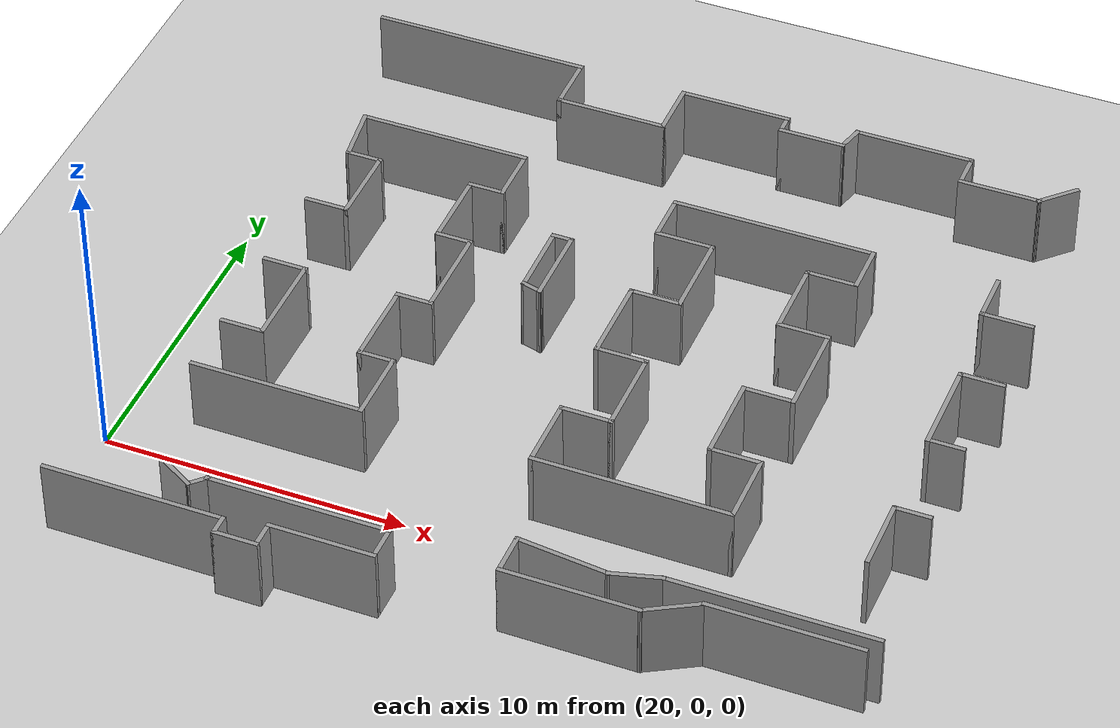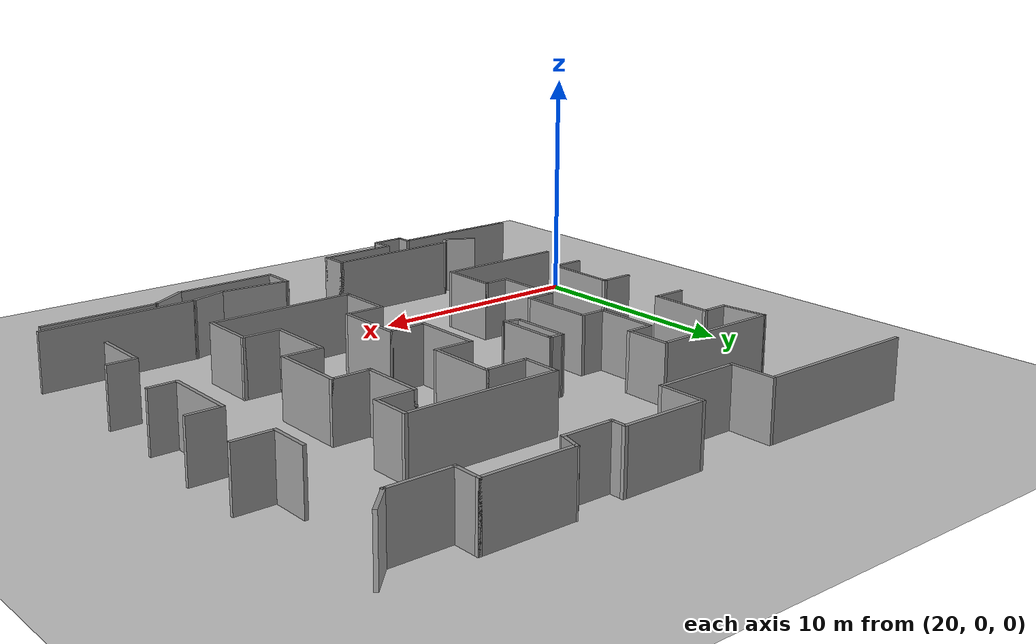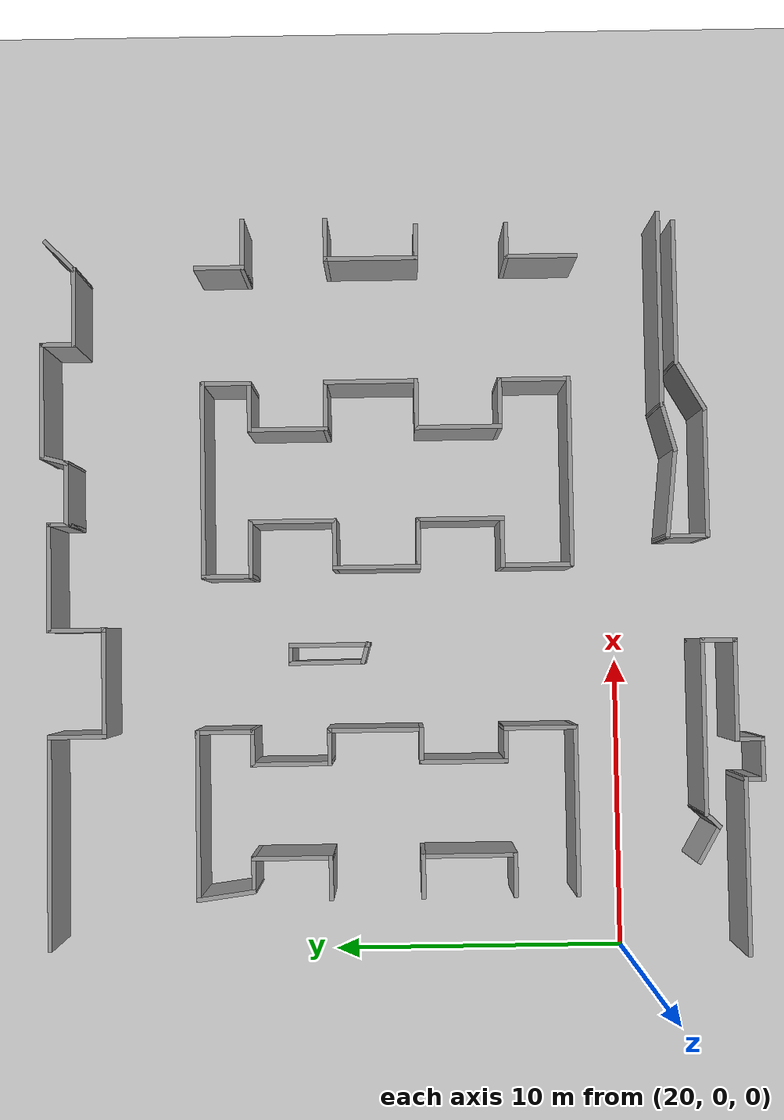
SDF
<sdf version="1.6">
 <world name="default">
  <model name="ground_plane">
   <static>1</static>
   <link name="link">
    <collision name="collision">
     <geometry><plane><normal>0 0 1</normal><size>100 100</size></plane></geometry>
     <surface><friction><ode><mu>100</mu><mu2>50</mu2></ode></friction></surface>
    </collision>
    <visual name="visual">
     <cast_shadows>0</cast_shadows>
     <geometry><plane><normal>0 0 1</normal><size>100 100</size></plane></geometry>
     <material>
      <script><uri>file://media/materials/scripts/gazebo.material</uri><name>Gazebo/Grey</name></script>
     </material>
    </visual>
   </link>
  </model>
  <model name="airport">
   <pose>30.6301 8.89323 0 0 -0 0</pose>
   <link name="Wall_100">
    <collision name="Wall_100_Collision">
     <geometry><box><size>2.5 0.15 2.5</size></box></geometry>
     <pose>0 0 1.25 0 -0 0</pose>
    </collision>
    <visual name="Wall_100_Visual">
     <pose>0 0 1.25 0 -0 0</pose>
     <geometry><box><size>2.5 0.15 2.5</size></box></geometry>
     <material>
      <script><uri>file://media/materials/scripts/gazebo.material</uri><name>Gazebo/Grey</name></script>
      <ambient>1 1 1 1</ambient>
     </material>
     <meta><layer>0</layer></meta>
    </visual>
    <pose>-2.79356 -5.95307 0 0 0 -1.5708</pose>
   </link>
   <link name="Wall_101">
    <collision name="Wall_101_Collision">
     <geometry><box><size>5.75 0.15 2.5</size></box></geometry>
     <pose>0 0 1.25 0 -0 0</pose>
    </collision>
    <visual name="Wall_101_Visual">
     <pose>0 0 1.25 0 -0 0</pose>
     <geometry><box><size>5.75 0.15 2.5</size></box></geometry>
     <material>
      <script><uri>file://media/materials/scripts/gazebo.material</uri><name>Gazebo/Grey</name></script>
      <ambient>1 1 1 1</ambient>
     </material>
     <meta><layer>0</layer></meta>
    </visual>
    <pose>-5.59356 -7.12807 0 0 -0 3.14159</pose>
   </link>
   <link name="Wall_103">
    <collision name="Wall_103_Collision">
     <geometry><box><size>1.5 0.15 2.5</size></box></geometry>
     <pose>0 0 1.25 0 -0 0</pose>
    </collision>
    <visual name="Wall_103_Visual">
     <pose>0 0 1.25 0 -0 0</pose>
     <geometry><box><size>1.5 0.15 2.5</size></box></geometry>
     <material>
      <script><uri>file://media/materials/scripts/gazebo.material</uri><name>Gazebo/Grey</name></script>
      <ambient>1 1 1 1</ambient>
     </material>
     <meta><layer>0</layer></meta>
    </visual>
    <pose>-7.71856 -5.02807 0 0 -0 0</pose>
   </link>
   <link name="Wall_104">
    <collision name="Wall_104_Collision">
     <geometry><box><size>3.25 0.15 2.5</size></box></geometry>
     <pose>0 0 1.25 0 -0 0</pose>
    </collision>
    <visual name="Wall_104_Visual">
     <pose>0 0 1.25 0 -0 0</pose>
     <geometry><box><size>3.25 0.15 2.5</size></box></geometry>
     <material>
      <script><uri>file://media/materials/scripts/gazebo.material</uri><name>Gazebo/Grey</name></script>
      <ambient>1 1 1 1</ambient>
     </material>
     <meta><layer>0</layer></meta>
    </visual>
    <pose>-7.04356 -3.47807 0 0 -0 1.5708</pose>
   </link>
   <link name="Wall_105">
    <collision name="Wall_105_Collision">
     <geometry><box><size>1.5 0.15 2.5</size></box></geometry>
     <pose>0 0 1.25 0 -0 0</pose>
    </collision>
    <visual name="Wall_105_Visual">
     <pose>0 0 1.25 0 -0 0</pose>
     <geometry><box><size>1.5 0.15 2.5</size></box></geometry>
     <material>
      <script><uri>file://media/materials/scripts/gazebo.material</uri><name>Gazebo/Grey</name></script>
      <ambient>1 1 1 1</ambient>
     </material>
     <meta><layer>0</layer></meta>
    </visual>
    <pose>-7.71856 -1.92807 0 0 -0 3.14159</pose>
   </link>
   <link name="Wall_107">
    <collision name="Wall_107_Collision">
     <geometry><box><size>1.5 0.15 2.5</size></box></geometry>
     <pose>0 0 1.25 0 -0 0</pose>
    </collision>
    <visual name="Wall_107_Visual">
     <pose>0 0 1.25 0 -0 0</pose>
     <geometry><box><size>1.5 0.15 2.5</size></box></geometry>
     <material>
      <script><uri>file://media/materials/scripts/gazebo.material</uri><name>Gazebo/Grey</name></script>
      <ambient>1 1 1 1</ambient>
     </material>
     <meta><layer>0</layer></meta>
    </visual>
    <pose>-7.71856 1.17193 0 0 -0 0</pose>
   </link>
   <link name="Wall_108">
    <collision name="Wall_108_Collision">
     <geometry><box><size>2.75 0.15 2.5</size></box></geometry>
     <pose>0 0 1.25 0 -0 0</pose>
    </collision>
    <visual name="Wall_108_Visual">
     <pose>0 0 1.25 0 -0 0</pose>
     <geometry><box><size>2.75 0.15 2.5</size></box></geometry>
     <material>
      <script><uri>file://media/materials/scripts/gazebo.material</uri><name>Gazebo/Grey</name></script>
      <ambient>1 1 1 1</ambient>
     </material>
     <meta><layer>0</layer></meta>
    </visual>
    <pose>-7.04356 2.47193 0 0 -0 1.5708</pose>
   </link>
   <link name="Wall_109">
    <collision name="Wall_109_Collision">
     <geometry><box><size>1.25 0.15 2.5</size></box></geometry>
     <pose>0 0 1.25 0 -0 0</pose>
    </collision>
    <visual name="Wall_109_Visual">
     <pose>0 0 1.25 0 -0 0</pose>
     <geometry><box><size>1.25 0.15 2.5</size></box></geometry>
     <material>
      <script><uri>file://media/materials/scripts/gazebo.material</uri><name>Gazebo/Grey</name></script>
      <ambient>1 1 1 1</ambient>
     </material>
     <meta><layer>0</layer></meta>
    </visual>
    <pose>-7.59356 3.77193 0 0 -0 3.14159</pose>
   </link>
   <link name="Wall_110">
    <collision name="Wall_110_Collision">
     <geometry><box><size>2.01681 0.15 2.5</size></box></geometry>
     <pose>0 0 1.25 0 -0 0</pose>
    </collision>
    <visual name="Wall_110_Visual">
     <pose>0 0 1.25 0 -0 0</pose>
     <geometry><box><size>2.01681 0.15 2.5</size></box></geometry>
     <material>
      <script><uri>file://media/materials/scripts/gazebo.material</uri><name>Gazebo/Grey</name></script>
      <ambient>1 1 1 1</ambient>
     </material>
     <meta><layer>0</layer></meta>
    </visual>
    <pose>-8.26856 4.69693 0 0 -0 1.70512</pose>
   </link>
   <link name="Wall_132">
    <collision name="Wall_132_Collision">
     <geometry><box><size>1.5 0.15 2.5</size></box></geometry>
     <pose>0 0 1.25 0 -0 0</pose>
    </collision>
    <visual name="Wall_132_Visual">
     <pose>0 0 1.25 0 -0 0</pose>
     <geometry><box><size>1.5 0.15 2.5</size></box></geometry>
     <material>
      <script><uri>file://media/materials/scripts/gazebo.material</uri><name>Gazebo/Grey</name></script>
      <ambient>1 1 1 1</ambient>
     </material>
     <meta><layer>0</layer></meta>
    </visual>
    <pose>-6.78978 -11.567 0 0 0 -0.523599</pose>
   </link>
   <link name="Wall_133">
    <collision name="Wall_133_Collision">
     <geometry><box><size>0.75 0.15 2.5</size></box></geometry>
     <pose>0 0 1.25 0 -0 0</pose>
    </collision>
    <visual name="Wall_133_Visual">
     <pose>0 0 1.25 0 -0 0</pose>
     <geometry><box><size>0.75 0.15 2.5</size></box></geometry>
     <material>
      <script><uri>file://media/materials/scripts/gazebo.material</uri><name>Gazebo/Grey</name></script>
      <ambient>1 1 1 1</ambient>
     </material>
     <meta><layer>0</layer></meta>
    </visual>
    <pose>-5.99308 -11.6924 0 0 -0 0.785398</pose>
   </link>
   <link name="Wall_134">
    <collision name="Wall_134_Collision">
     <geometry><box><size>6 0.15 2.5</size></box></geometry>
     <pose>0 0 1.25 0 -0 0</pose>
    </collision>
    <visual name="Wall_134_Visual">
     <pose>0 0 1.25 0 -0 0</pose>
     <geometry><box><size>6 0.15 2.5</size></box></geometry>
     <material>
      <script><uri>file://media/materials/scripts/gazebo.material</uri><name>Gazebo/Grey</name></script>
      <ambient>1 1 1 1</ambient>
     </material>
     <meta><layer>0</layer></meta>
    </visual>
    <pose>-2.85595 -11.4803 0 0 -0 0</pose>
   </link>
   <link name="Wall_135">
    <collision name="Wall_135_Collision">
     <geometry><box><size>1.25 0.15 2.5</size></box></geometry>
     <pose>0 0 1.25 0 -0 0</pose>
    </collision>
    <visual name="Wall_135_Visual">
     <pose>0 0 1.25 0 -0 0</pose>
     <geometry><box><size>1.25 0.15 2.5</size></box></geometry>
     <material>
      <script><uri>file://media/materials/scripts/gazebo.material</uri><name>Gazebo/Grey</name></script>
      <ambient>1 1 1 1</ambient>
     </material>
     <meta><layer>0</layer></meta>
    </visual>
    <pose>0.069051 -12.0303 0 0 0 -1.5708</pose>
   </link>
   <link name="Wall_136">
    <collision name="Wall_136_Collision">
     <geometry><box><size>3.5 0.15 2.5</size></box></geometry>
     <pose>0 0 1.25 0 -0 0</pose>
    </collision>
    <visual name="Wall_136_Visual">
     <pose>0 0 1.25 0 -0 0</pose>
     <geometry><box><size>3.5 0.15 2.5</size></box></geometry>
     <material>
      <script><uri>file://media/materials/scripts/gazebo.material</uri><name>Gazebo/Grey</name></script>
      <ambient>1 1 1 1</ambient>
     </material>
     <meta><layer>0</layer></meta>
    </visual>
    <pose>-1.60595 -12.5803 0 0 -0 3.14159</pose>
   </link>
   <link name="Wall_137">
    <collision name="Wall_137_Collision">
     <geometry><box><size>1 0.15 2.5</size></box></geometry>
     <pose>0 0 1.25 0 -0 0</pose>
    </collision>
    <visual name="Wall_137_Visual">
     <pose>0 0 1.25 0 -0 0</pose>
     <geometry><box><size>1 0.15 2.5</size></box></geometry>
     <material>
      <script><uri>file://media/materials/scripts/gazebo.material</uri><name>Gazebo/Grey</name></script>
      <ambient>1 1 1 1</ambient>
     </material>
     <meta><layer>0</layer></meta>
    </visual>
    <pose>-3.28095 -13.0053 0 0 0 -1.5708</pose>
   </link>
   <link name="Wall_138">
    <collision name="Wall_138_Collision">
     <geometry><box><size>1.5 0.15 2.5</size></box></geometry>
     <pose>0 0 1.25 0 -0 0</pose>
    </collision>
    <visual name="Wall_138_Visual">
     <pose>0 0 1.25 0 -0 0</pose>
     <geometry><box><size>1.5 0.15 2.5</size></box></geometry>
     <material>
      <script><uri>file://media/materials/scripts/gazebo.material</uri><name>Gazebo/Grey</name></script>
      <ambient>1 1 1 1</ambient>
     </material>
     <meta><layer>0</layer></meta>
    </visual>
    <pose>-3.95595 -13.4303 0 0 -0 3.14159</pose>
   </link>
   <link name="Wall_139">
    <collision name="Wall_139_Collision">
     <geometry><box><size>0.75 0.15 2.5</size></box></geometry>
     <pose>0 0 1.25 0 -0 0</pose>
    </collision>
    <visual name="Wall_139_Visual">
     <pose>0 0 1.25 0 -0 0</pose>
     <geometry><box><size>0.75 0.15 2.5</size></box></geometry>
     <material>
      <script><uri>file://media/materials/scripts/gazebo.material</uri><name>Gazebo/Grey</name></script>
      <ambient>1 1 1 1</ambient>
     </material>
     <meta><layer>0</layer></meta>
    </visual>
    <pose>-4.63095 -13.1303 0 0 -0 1.5708</pose>
   </link>
   <link name="Wall_140">
    <collision name="Wall_140_Collision">
     <geometry><box><size>6 0.15 2.5</size></box></geometry>
     <pose>0 0 1.25 0 -0 0</pose>
    </collision>
    <visual name="Wall_140_Visual">
     <pose>0 0 1.25 0 -0 0</pose>
     <geometry><box><size>6 0.15 2.5</size></box></geometry>
     <material>
      <script><uri>file://media/materials/scripts/gazebo.material</uri><name>Gazebo/Grey</name></script>
      <ambient>1 1 1 1</ambient>
     </material>
     <meta><layer>0</layer></meta>
    </visual>
    <pose>-7.55595 -12.8303 0 0 -0 3.14159</pose>
   </link>
   <link name="Wall_146">
    <collision name="Wall_146_Collision">
     <geometry><box><size>2 0.15 2.5</size></box></geometry>
     <pose>0 0 1.25 0 -0 0</pose>
    </collision>
    <visual name="Wall_146_Visual">
     <pose>0 0 1.25 0 -0 0</pose>
     <geometry><box><size>2 0.15 2.5</size></box></geometry>
     <material>
      <script><uri>file://media/materials/scripts/gazebo.material</uri><name>Gazebo/Grey</name></script>
      <ambient>1 1 1 1</ambient>
     </material>
     <meta><layer>0</layer></meta>
    </visual>
    <pose>3.39066 3.77039 0 0 -0 0</pose>
   </link>
   <link name="Wall_150">
    <collision name="Wall_150_Collision">
     <geometry><box><size>3 0.15 2.5</size></box></geometry>
     <pose>0 0 1.25 0 -0 0</pose>
    </collision>
    <visual name="Wall_150_Visual">
     <pose>0 0 1.25 0 -0 0</pose>
     <geometry><box><size>3 0.15 2.5</size></box></geometry>
     <material>
      <script><uri>file://media/materials/scripts/gazebo.material</uri><name>Gazebo/Grey</name></script>
      <ambient>1 1 1 1</ambient>
     </material>
     <meta><layer>0</layer></meta>
    </visual>
    <pose>4.31566 2.34539 0 0 0 -1.5708</pose>
   </link>
   <link name="Wall_151">
    <collision name="Wall_151_Collision">
     <geometry><box><size>1.75 0.15 2.5</size></box></geometry>
     <pose>0 0 1.25 0 -0 0</pose>
    </collision>
    <visual name="Wall_151_Visual">
     <pose>0 0 1.25 0 -0 0</pose>
     <geometry><box><size>1.75 0.15 2.5</size></box></geometry>
     <material>
      <script><uri>file://media/materials/scripts/gazebo.material</uri><name>Gazebo/Grey</name></script>
      <ambient>1 1 1 1</ambient>
     </material>
     <meta><layer>0</layer></meta>
    </visual>
    <pose>3.51566 0.920386 0 0 -0 3.14159</pose>
   </link>
   <link name="Wall_152">
    <collision name="Wall_152_Collision">
     <geometry><box><size>3 0.15 2.5</size></box></geometry>
     <pose>0 0 1.25 0 -0 0</pose>
    </collision>
    <visual name="Wall_152_Visual">
     <pose>0 0 1.25 0 -0 0</pose>
     <geometry><box><size>3 0.15 2.5</size></box></geometry>
     <material>
      <script><uri>file://media/materials/scripts/gazebo.material</uri><name>Gazebo/Grey</name></script>
      <ambient>1 1 1 1</ambient>
     </material>
     <meta><layer>0</layer></meta>
    </visual>
    <pose>2.71566 -0.504614 0 0 0 -1.5708</pose>
   </link>
   <link name="Wall_153">
    <collision name="Wall_153_Collision">
     <geometry><box><size>1.75 0.15 2.5</size></box></geometry>
     <pose>0 0 1.25 0 -0 0</pose>
    </collision>
    <visual name="Wall_153_Visual">
     <pose>0 0 1.25 0 -0 0</pose>
     <geometry><box><size>1.75 0.15 2.5</size></box></geometry>
     <material>
      <script><uri>file://media/materials/scripts/gazebo.material</uri><name>Gazebo/Grey</name></script>
      <ambient>1 1 1 1</ambient>
     </material>
     <meta><layer>0</layer></meta>
    </visual>
    <pose>3.51566 -1.92961 0 0 -0 0</pose>
   </link>
   <link name="Wall_154">
    <collision name="Wall_154_Collision">
     <geometry><box><size>3 0.15 2.5</size></box></geometry>
     <pose>0 0 1.25 0 -0 0</pose>
    </collision>
    <visual name="Wall_154_Visual">
     <pose>0 0 1.25 0 -0 0</pose>
     <geometry><box><size>3 0.15 2.5</size></box></geometry>
     <material>
      <script><uri>file://media/materials/scripts/gazebo.material</uri><name>Gazebo/Grey</name></script>
      <ambient>1 1 1 1</ambient>
     </material>
     <meta><layer>0</layer></meta>
    </visual>
    <pose>4.31566 -3.35461 0 0 0 -1.5708</pose>
   </link>
   <link name="Wall_155">
    <collision name="Wall_155_Collision">
     <geometry><box><size>1.75 0.15 2.5</size></box></geometry>
     <pose>0 0 1.25 0 -0 0</pose>
    </collision>
    <visual name="Wall_155_Visual">
     <pose>0 0 1.25 0 -0 0</pose>
     <geometry><box><size>1.75 0.15 2.5</size></box></geometry>
     <material>
      <script><uri>file://media/materials/scripts/gazebo.material</uri><name>Gazebo/Grey</name></script>
      <ambient>1 1 1 1</ambient>
     </material>
     <meta><layer>0</layer></meta>
    </visual>
    <pose>3.51566 -4.77961 0 0 -0 3.14159</pose>
   </link>
   <link name="Wall_158">
    <collision name="Wall_158_Collision">
     <geometry><box><size>2.5 0.15 2.5</size></box></geometry>
     <pose>0 0 1.25 0 -0 0</pose>
    </collision>
    <visual name="Wall_158_Visual">
     <pose>0 0 1.25 0 -0 0</pose>
     <geometry><box><size>2.5 0.15 2.5</size></box></geometry>
     <material>
      <script><uri>file://media/materials/scripts/gazebo.material</uri><name>Gazebo/Grey</name></script>
      <ambient>1 1 1 1</ambient>
     </material>
     <meta><layer>0</layer></meta>
    </visual>
    <pose>2.71566 -5.95461 0 0 0 -1.5708</pose>
   </link>
   <link name="Wall_159">
    <collision name="Wall_159_Collision">
     <geometry><box><size>6.5 0.15 2.5</size></box></geometry>
     <pose>0 0 1.25 0 -0 0</pose>
    </collision>
    <visual name="Wall_159_Visual">
     <pose>0 0 1.25 0 -0 0</pose>
     <geometry><box><size>6.5 0.15 2.5</size></box></geometry>
     <material>
      <script><uri>file://media/materials/scripts/gazebo.material</uri><name>Gazebo/Grey</name></script>
      <ambient>1 1 1 1</ambient>
     </material>
     <meta><layer>0</layer></meta>
    </visual>
    <pose>5.89066 -7.12961 0 0 -0 0</pose>
   </link>
   <link name="Wall_160">
    <collision name="Wall_160_Collision">
     <geometry><box><size>2.5 0.15 2.5</size></box></geometry>
     <pose>0 0 1.25 0 -0 0</pose>
    </collision>
    <visual name="Wall_160_Visual">
     <pose>0 0 1.25 0 -0 0</pose>
     <geometry><box><size>2.5 0.15 2.5</size></box></geometry>
     <material>
      <script><uri>file://media/materials/scripts/gazebo.material</uri><name>Gazebo/Grey</name></script>
      <ambient>1 1 1 1</ambient>
     </material>
     <meta><layer>0</layer></meta>
    </visual>
    <pose>9.06566 -5.95461 0 0 -0 1.5708</pose>
   </link>
   <link name="Wall_161">
    <collision name="Wall_161_Collision">
     <geometry><box><size>1.75 0.15 2.5</size></box></geometry>
     <pose>0 0 1.25 0 -0 0</pose>
    </collision>
    <visual name="Wall_161_Visual">
     <pose>0 0 1.25 0 -0 0</pose>
     <geometry><box><size>1.75 0.15 2.5</size></box></geometry>
     <material>
      <script><uri>file://media/materials/scripts/gazebo.material</uri><name>Gazebo/Grey</name></script>
      <ambient>1 1 1 1</ambient>
     </material>
     <meta><layer>0</layer></meta>
    </visual>
    <pose>8.26566 -4.77961 0 0 -0 3.14159</pose>
   </link>
   <link name="Wall_162">
    <collision name="Wall_162_Collision">
     <geometry><box><size>3 0.15 2.5</size></box></geometry>
     <pose>0 0 1.25 0 -0 0</pose>
    </collision>
    <visual name="Wall_162_Visual">
     <pose>0 0 1.25 0 -0 0</pose>
     <geometry><box><size>3 0.15 2.5</size></box></geometry>
     <material>
      <script><uri>file://media/materials/scripts/gazebo.material</uri><name>Gazebo/Grey</name></script>
      <ambient>1 1 1 1</ambient>
     </material>
     <meta><layer>0</layer></meta>
    </visual>
    <pose>7.46566 -3.35461 0 0 -0 1.5708</pose>
   </link>
   <link name="Wall_163">
    <collision name="Wall_163_Collision">
     <geometry><box><size>1.75 0.15 2.5</size></box></geometry>
     <pose>0 0 1.25 0 -0 0</pose>
    </collision>
    <visual name="Wall_163_Visual">
     <pose>0 0 1.25 0 -0 0</pose>
     <geometry><box><size>1.75 0.15 2.5</size></box></geometry>
     <material>
      <script><uri>file://media/materials/scripts/gazebo.material</uri><name>Gazebo/Grey</name></script>
      <ambient>1 1 1 1</ambient>
     </material>
     <meta><layer>0</layer></meta>
    </visual>
    <pose>8.26566 -1.92961 0 0 -0 0</pose>
   </link>
   <link name="Wall_164">
    <collision name="Wall_164_Collision">
     <geometry><box><size>3.25 0.15 2.5</size></box></geometry>
     <pose>0 0 1.25 0 -0 0</pose>
    </collision>
    <visual name="Wall_164_Visual">
     <pose>0 0 1.25 0 -0 0</pose>
     <geometry><box><size>3.25 0.15 2.5</size></box></geometry>
     <material>
      <script><uri>file://media/materials/scripts/gazebo.material</uri><name>Gazebo/Grey</name></script>
      <ambient>1 1 1 1</ambient>
     </material>
     <meta><layer>0</layer></meta>
    </visual>
    <pose>9.06566 -0.379614 0 0 -0 1.5708</pose>
   </link>
   <link name="Wall_165">
    <collision name="Wall_165_Collision">
     <geometry><box><size>1.75 0.15 2.5</size></box></geometry>
     <pose>0 0 1.25 0 -0 0</pose>
    </collision>
    <visual name="Wall_165_Visual">
     <pose>0 0 1.25 0 -0 0</pose>
     <geometry><box><size>1.75 0.15 2.5</size></box></geometry>
     <material>
      <script><uri>file://media/materials/scripts/gazebo.material</uri><name>Gazebo/Grey</name></script>
      <ambient>1 1 1 1</ambient>
     </material>
     <meta><layer>0</layer></meta>
    </visual>
    <pose>8.26566 1.17039 0 0 -0 3.14159</pose>
   </link>
   <link name="Wall_166">
    <collision name="Wall_166_Collision">
     <geometry><box><size>2.75 0.15 2.5</size></box></geometry>
     <pose>0 0 1.25 0 -0 0</pose>
    </collision>
    <visual name="Wall_166_Visual">
     <pose>0 0 1.25 0 -0 0</pose>
     <geometry><box><size>2.75 0.15 2.5</size></box></geometry>
     <material>
      <script><uri>file://media/materials/scripts/gazebo.material</uri><name>Gazebo/Grey</name></script>
      <ambient>1 1 1 1</ambient>
     </material>
     <meta><layer>0</layer></meta>
    </visual>
    <pose>7.46566 2.47039 0 0 -0 1.5708</pose>
   </link>
   <link name="Wall_167">
    <collision name="Wall_167_Collision">
     <geometry><box><size>1.75 0.15 2.5</size></box></geometry>
     <pose>0 0 1.25 0 -0 0</pose>
    </collision>
    <visual name="Wall_167_Visual">
     <pose>0 0 1.25 0 -0 0</pose>
     <geometry><box><size>1.75 0.15 2.5</size></box></geometry>
     <material>
      <script><uri>file://media/materials/scripts/gazebo.material</uri><name>Gazebo/Grey</name></script>
      <ambient>1 1 1 1</ambient>
     </material>
     <meta><layer>0</layer></meta>
    </visual>
    <pose>8.26566 3.77039 0 0 -0 0</pose>
   </link>
   <link name="Wall_168">
    <collision name="Wall_168_Collision">
     <geometry><box><size>1.75 0.15 2.5</size></box></geometry>
     <pose>0 0 1.25 0 -0 0</pose>
    </collision>
    <visual name="Wall_168_Visual">
     <pose>0 0 1.25 0 -0 0</pose>
     <geometry><box><size>1.75 0.15 2.5</size></box></geometry>
     <material>
      <script><uri>file://media/materials/scripts/gazebo.material</uri><name>Gazebo/Grey</name></script>
      <ambient>1 1 1 1</ambient>
     </material>
     <meta><layer>0</layer></meta>
    </visual>
    <pose>9.06566 4.57039 0 0 -0 1.5708</pose>
   </link>
   <link name="Wall_169">
    <collision name="Wall_169_Collision">
     <geometry><box><size>6.75 0.15 2.5</size></box></geometry>
     <pose>0 0 1.25 0 -0 0</pose>
    </collision>
    <visual name="Wall_169_Visual">
     <pose>0 0 1.25 0 -0 0</pose>
     <geometry><box><size>6.75 0.15 2.5</size></box></geometry>
     <material>
      <script><uri>file://media/materials/scripts/gazebo.material</uri><name>Gazebo/Grey</name></script>
      <ambient>1 1 1 1</ambient>
     </material>
     <meta><layer>0</layer></meta>
    </visual>
    <pose>5.76566 5.37039 0 0 -0 3.14159</pose>
   </link>
   <link name="Wall_171">
    <collision name="Wall_171_Collision">
     <geometry><box><size>1.75 0.15 2.5</size></box></geometry>
     <pose>0 0 1.25 0 -0 0</pose>
    </collision>
    <visual name="Wall_171_Visual">
     <pose>0 0 1.25 0 -0 0</pose>
     <geometry><box><size>1.75 0.15 2.5</size></box></geometry>
     <material>
      <script><uri>file://media/materials/scripts/gazebo.material</uri><name>Gazebo/Grey</name></script>
      <ambient>1 1 1 1</ambient>
     </material>
     <meta><layer>0</layer></meta>
    </visual>
    <pose>2.46566 4.57039 0 0 -0 1.5708</pose>
   </link>
   <link name="Wall_175">
    <collision name="Wall_175_Collision">
     <geometry><box><size>0.75 0.15 2.5</size></box></geometry>
     <pose>0 0 1.25 0 -0 0</pose>
    </collision>
    <visual name="Wall_175_Visual">
     <pose>0 0 1.25 0 -0 0</pose>
     <geometry><box><size>0.75 0.15 2.5</size></box></geometry>
     <material>
      <script><uri>file://media/materials/scripts/gazebo.material</uri><name>Gazebo/Grey</name></script>
      <ambient>1 1 1 1</ambient>
     </material>
     <meta><layer>0</layer></meta>
    </visual>
    <pose>-0.201905 2.4487 0 0 -0 0</pose>
   </link>
   <link name="Wall_176">
    <collision name="Wall_176_Collision">
     <geometry><box><size>2.75 0.15 2.5</size></box></geometry>
     <pose>0 0 1.25 0 -0 0</pose>
    </collision>
    <visual name="Wall_176_Visual">
     <pose>0 0 1.25 0 -0 0</pose>
     <geometry><box><size>2.75 0.15 2.5</size></box></geometry>
     <material>
      <script><uri>file://media/materials/scripts/gazebo.material</uri><name>Gazebo/Grey</name></script>
      <ambient>1 1 1 1</ambient>
     </material>
     <meta><layer>0</layer></meta>
    </visual>
    <pose>0.098094 1.1487 0 0 0 -1.5708</pose>
   </link>
   <link name="Wall_177">
    <collision name="Wall_177_Collision">
     <geometry><box><size>0.75 0.15 2.5</size></box></geometry>
     <pose>0 0 1.25 0 -0 0</pose>
    </collision>
    <visual name="Wall_177_Visual">
     <pose>0 0 1.25 0 -0 0</pose>
     <geometry><box><size>0.75 0.15 2.5</size></box></geometry>
     <material>
      <script><uri>file://media/materials/scripts/gazebo.material</uri><name>Gazebo/Grey</name></script>
      <ambient>1 1 1 1</ambient>
     </material>
     <meta><layer>0</layer></meta>
    </visual>
    <pose>-0.191684 -0.073658 0 0 -0 2.87979</pose>
   </link>
   <link name="Wall_178">
    <collision name="Wall_178_Collision">
     <geometry><box><size>2.59479 0.15 2.5</size></box></geometry>
     <pose>0 0 1.25 0 -0 0</pose>
    </collision>
    <visual name="Wall_178_Visual">
     <pose>0 0 1.25 0 -0 0</pose>
     <geometry><box><size>2.59479 0.15 2.5</size></box></geometry>
     <material>
      <script><uri>file://media/materials/scripts/gazebo.material</uri><name>Gazebo/Grey</name></script>
      <ambient>1 1 1 1</ambient>
     </material>
     <meta><layer>0</layer></meta>
    </visual>
    <pose>-0.491683 1.22634 0 0 -0 1.57916</pose>
   </link>
   <link name="Wall_180">
    <collision name="Wall_180_Collision">
     <geometry><box><size>1.5 0.15 2.5</size></box></geometry>
     <pose>0 0 1.25 0 -0 0</pose>
    </collision>
    <visual name="Wall_180_Visual">
     <pose>0 0 1.25 0 -0 0</pose>
     <geometry><box><size>1.5 0.15 2.5</size></box></geometry>
     <material>
      <script><uri>file://media/materials/scripts/gazebo.material</uri><name>Gazebo/Grey</name></script>
      <ambient>1 1 1 1</ambient>
     </material>
     <meta><layer>0</layer></meta>
    </visual>
    <pose>3.62505 -11.0712 0 0 0 -1.5708</pose>
   </link>
   <link name="Wall_181">
    <collision name="Wall_181_Collision">
     <geometry><box><size>4.5 0.15 2.5</size></box></geometry>
     <pose>0 0 1.25 0 -0 0</pose>
    </collision>
    <visual name="Wall_181_Visual">
     <pose>0 0 1.25 0 -0 0</pose>
     <geometry><box><size>4.5 0.15 2.5</size></box></geometry>
     <material>
      <script><uri>file://media/materials/scripts/gazebo.material</uri><name>Gazebo/Grey</name></script>
      <ambient>1 1 1 1</ambient>
     </material>
     <meta><layer>0</layer></meta>
    </visual>
    <pose>5.80005 -11.7462 0 0 -0 0</pose>
   </link>
   <link name="Wall_182">
    <collision name="Wall_182_Collision">
     <geometry><box><size>2 0.15 2.5</size></box></geometry>
     <pose>0 0 1.25 0 -0 0</pose>
    </collision>
    <visual name="Wall_182_Visual">
     <pose>0 0 1.25 0 -0 0</pose>
     <geometry><box><size>2 0.15 2.5</size></box></geometry>
     <material>
      <script><uri>file://media/materials/scripts/gazebo.material</uri><name>Gazebo/Grey</name></script>
      <ambient>1 1 1 1</ambient>
     </material>
     <meta><layer>0</layer></meta>
    </visual>
    <pose>8.77613 -11.2837 0 0 -0 0.523599</pose>
   </link>
   <link name="Wall_183">
    <collision name="Wall_183_Collision">
     <geometry><box><size>5 0.15 2.5</size></box></geometry>
     <pose>0 0 1.25 0 -0 0</pose>
    </collision>
    <visual name="Wall_183_Visual">
     <pose>0 0 1.25 0 -0 0</pose>
     <geometry><box><size>5 0.15 2.5</size></box></geometry>
     <material>
      <script><uri>file://media/materials/scripts/gazebo.material</uri><name>Gazebo/Grey</name></script>
      <ambient>1 1 1 1</ambient>
     </material>
     <meta><layer>0</layer></meta>
    </visual>
    <pose>12.0022 -10.8212 0 0 -0 0</pose>
   </link>
   <link name="Wall_185">
    <collision name="Wall_185_Collision">
     <geometry><box><size>6.75 0.15 2.5</size></box></geometry>
     <pose>0 0 1.25 0 -0 0</pose>
    </collision>
    <visual name="Wall_185_Visual">
     <pose>0 0 1.25 0 -0 0</pose>
     <geometry><box><size>6.75 0.15 2.5</size></box></geometry>
     <material>
      <script><uri>file://media/materials/scripts/gazebo.material</uri><name>Gazebo/Grey</name></script>
      <ambient>1 1 1 1</ambient>
     </material>
     <meta><layer>0</layer></meta>
    </visual>
    <pose>11.4272 -10.3016 0 0 -0 3.14159</pose>
   </link>
   <link name="Wall_186">
    <collision name="Wall_186_Collision">
     <geometry><box><size>1.75 0.15 2.5</size></box></geometry>
     <pose>0 0 1.25 0 -0 0</pose>
    </collision>
    <visual name="Wall_186_Visual">
     <pose>0 0 1.25 0 -0 0</pose>
     <geometry><box><size>1.75 0.15 2.5</size></box></geometry>
     <material>
      <script><uri>file://media/materials/scripts/gazebo.material</uri><name>Gazebo/Grey</name></script>
      <ambient>1 1 1 1</ambient>
     </material>
     <meta><layer>0</layer></meta>
    </visual>
    <pose>7.35446 -10.5086 0 0 0 -2.87979</pose>
   </link>
   <link name="Wall_187">
    <collision name="Wall_187_Collision">
     <geometry><box><size>3.12388 0.15 2.5</size></box></geometry>
     <pose>0 0 1.25 0 -0 0</pose>
    </collision>
    <visual name="Wall_187_Visual">
     <pose>0 0 1.25 0 -0 0</pose>
     <geometry><box><size>3.12388 0.15 2.5</size></box></geometry>
     <material>
      <script><uri>file://media/materials/scripts/gazebo.material</uri><name>Gazebo/Grey</name></script>
      <ambient>1 1 1 1</ambient>
     </material>
     <meta><layer>0</layer></meta>
    </visual>
    <pose>5.10339 -10.5559 0 0 -0 3.03395</pose>
   </link>
   <link name="Wall_189">
    <collision name="Wall_189_Collision">
     <geometry><box><size>0.75 0.15 2.5</size></box></geometry>
     <pose>0 0 1.25 0 -0 0</pose>
    </collision>
    <visual name="Wall_189_Visual">
     <pose>0 0 1.25 0 -0 0</pose>
     <geometry><box><size>0.75 0.15 2.5</size></box></geometry>
     <material>
      <script><uri>file://media/materials/scripts/gazebo.material</uri><name>Gazebo/Grey</name></script>
      <ambient>1 1 1 1</ambient>
     </material>
     <meta><layer>0</layer></meta>
    </visual>
    <pose>4.32151 10.3231 0 0 0 -1.5708</pose>
   </link>
   <link name="Wall_190">
    <collision name="Wall_190_Collision">
     <geometry><box><size>2.25 0.15 2.5</size></box></geometry>
     <pose>0 0 1.25 0 -0 0</pose>
    </collision>
    <visual name="Wall_190_Visual">
     <pose>0 0 1.25 0 -0 0</pose>
     <geometry><box><size>2.25 0.15 2.5</size></box></geometry>
     <material>
      <script><uri>file://media/materials/scripts/gazebo.material</uri><name>Gazebo/Grey</name></script>
      <ambient>1 1 1 1</ambient>
     </material>
     <meta><layer>0</layer></meta>
    </visual>
    <pose>5.37151 10.0231 0 0 -0 0</pose>
   </link>
   <link name="Wall_191">
    <collision name="Wall_191_Collision">
     <geometry><box><size>1 0.15 2.5</size></box></geometry>
     <pose>0 0 1.25 0 -0 0</pose>
    </collision>
    <visual name="Wall_191_Visual">
     <pose>0 0 1.25 0 -0 0</pose>
     <geometry><box><size>1 0.15 2.5</size></box></geometry>
     <material>
      <script><uri>file://media/materials/scripts/gazebo.material</uri><name>Gazebo/Grey</name></script>
      <ambient>1 1 1 1</ambient>
     </material>
     <meta><layer>0</layer></meta>
    </visual>
    <pose>6.53151 10.4336 0 0 -0 1.309</pose>
   </link>
   <link name="Wall_192">
    <collision name="Wall_192_Collision">
     <geometry><box><size>4 0.15 2.5</size></box></geometry>
     <pose>0 0 1.25 0 -0 0</pose>
    </collision>
    <visual name="Wall_192_Visual">
     <pose>0 0 1.25 0 -0 0</pose>
     <geometry><box><size>4 0.15 2.5</size></box></geometry>
     <material>
      <script><uri>file://media/materials/scripts/gazebo.material</uri><name>Gazebo/Grey</name></script>
      <ambient>1 1 1 1</ambient>
     </material>
     <meta><layer>0</layer></meta>
    </visual>
    <pose>8.56651 10.8441 0 0 -0 0</pose>
   </link>
   <link name="Wall_193">
    <collision name="Wall_193_Collision">
     <geometry><box><size>1.25 0.15 2.5</size></box></geometry>
     <pose>0 0 1.25 0 -0 0</pose>
    </collision>
    <visual name="Wall_193_Visual">
     <pose>0 0 1.25 0 -0 0</pose>
     <geometry><box><size>1.25 0.15 2.5</size></box></geometry>
     <material>
      <script><uri>file://media/materials/scripts/gazebo.material</uri><name>Gazebo/Grey</name></script>
      <ambient>1 1 1 1</ambient>
     </material>
     <meta><layer>0</layer></meta>
    </visual>
    <pose>10.4915 10.2941 0 0 0 -1.5708</pose>
   </link>
   <link name="Wall_194">
    <collision name="Wall_194_Collision">
     <geometry><box><size>2.75 0.15 2.5</size></box></geometry>
     <pose>0 0 1.25 0 -0 0</pose>
    </collision>
    <visual name="Wall_194_Visual">
     <pose>0 0 1.25 0 -0 0</pose>
     <geometry><box><size>2.75 0.15 2.5</size></box></geometry>
     <material>
      <script><uri>file://media/materials/scripts/gazebo.material</uri><name>Gazebo/Grey</name></script>
      <ambient>1 1 1 1</ambient>
     </material>
     <meta><layer>0</layer></meta>
    </visual>
    <pose>11.7915 9.74409 0 0 -0 0</pose>
   </link>
   <link name="Wall_195">
    <collision name="Wall_195_Collision">
     <geometry><box><size>1.5 0.15 2.5</size></box></geometry>
     <pose>0 0 1.25 0 -0 0</pose>
    </collision>
    <visual name="Wall_195_Visual">
     <pose>0 0 1.25 0 -0 0</pose>
     <geometry><box><size>1.5 0.15 2.5</size></box></geometry>
     <material>
      <script><uri>file://media/materials/scripts/gazebo.material</uri><name>Gazebo/Grey</name></script>
      <ambient>1 1 1 1</ambient>
     </material>
     <meta><layer>0</layer></meta>
    </visual>
    <pose>13.5688 10.2214 0 0 -0 0.785398</pose>
   </link>
   <link name="Wall_200">
    <collision name="Wall_200_Collision">
     <geometry><box><size>1.75 0.15 2.5</size></box></geometry>
     <pose>0 0 1.25 0 -0 0</pose>
    </collision>
    <visual name="Wall_200_Visual">
     <pose>0 0 1.25 0 -0 0</pose>
     <geometry><box><size>1.75 0.15 2.5</size></box></geometry>
     <material>
      <script><uri>file://media/materials/scripts/gazebo.material</uri><name>Gazebo/Grey</name></script>
      <ambient>1 1 1 1</ambient>
     </material>
     <meta><layer>0</layer></meta>
    </visual>
    <pose>13.8701 3.95981 0 0 -0 0</pose>
   </link>
   <link name="Wall_202">
    <collision name="Wall_202_Collision">
     <geometry><box><size>1.5 0.15 2.5</size></box></geometry>
     <pose>0 0 1.25 0 -0 0</pose>
    </collision>
    <visual name="Wall_202_Visual">
     <pose>0 0 1.25 0 -0 0</pose>
     <geometry><box><size>1.5 0.15 2.5</size></box></geometry>
     <material>
      <script><uri>file://media/materials/scripts/gazebo.material</uri><name>Gazebo/Grey</name></script>
      <ambient>1 1 1 1</ambient>
     </material>
     <meta><layer>0</layer></meta>
    </visual>
    <pose>13.9951 1.10981 0 0 -0 3.14159</pose>
   </link>
   <link name="Wall_203">
    <collision name="Wall_203_Collision">
     <geometry><box><size>3.25 0.15 2.5</size></box></geometry>
     <pose>0 0 1.25 0 -0 0</pose>
    </collision>
    <visual name="Wall_203_Visual">
     <pose>0 0 1.25 0 -0 0</pose>
     <geometry><box><size>3.25 0.15 2.5</size></box></geometry>
     <material>
      <script><uri>file://media/materials/scripts/gazebo.material</uri><name>Gazebo/Grey</name></script>
      <ambient>1 1 1 1</ambient>
     </material>
     <meta><layer>0</layer></meta>
    </visual>
    <pose>13.3201 -0.44019 0 0 0 -1.5708</pose>
   </link>
   <link name="Wall_204">
    <collision name="Wall_204_Collision">
     <geometry><box><size>1.25 0.15 2.5</size></box></geometry>
     <pose>0 0 1.25 0 -0 0</pose>
    </collision>
    <visual name="Wall_204_Visual">
     <pose>0 0 1.25 0 -0 0</pose>
     <geometry><box><size>1.25 0.15 2.5</size></box></geometry>
     <material>
      <script><uri>file://media/materials/scripts/gazebo.material</uri><name>Gazebo/Grey</name></script>
      <ambient>1 1 1 1</ambient>
     </material>
     <meta><layer>0</layer></meta>
    </visual>
    <pose>13.8701 -1.99019 0 0 -0 0</pose>
   </link>
   <link name="Wall_206">
    <collision name="Wall_206_Collision">
     <geometry><box><size>1.25 0.15 2.5</size></box></geometry>
     <pose>0 0 1.25 0 -0 0</pose>
    </collision>
    <visual name="Wall_206_Visual">
     <pose>0 0 1.25 0 -0 0</pose>
     <geometry><box><size>1.25 0.15 2.5</size></box></geometry>
     <material>
      <script><uri>file://media/materials/scripts/gazebo.material</uri><name>Gazebo/Grey</name></script>
      <ambient>1 1 1 1</ambient>
     </material>
     <meta><layer>0</layer></meta>
    </visual>
    <pose>13.8701 -5.09019 0 0 -0 3.14159</pose>
   </link>
   <link name="Wall_207">
    <collision name="Wall_207_Collision">
     <geometry><box><size>2.5 0.15 2.5</size></box></geometry>
     <pose>0 0 1.25 0 -0 0</pose>
    </collision>
    <visual name="Wall_207_Visual">
     <pose>0 0 1.25 0 -0 0</pose>
     <geometry><box><size>2.5 0.15 2.5</size></box></geometry>
     <material>
      <script><uri>file://media/materials/scripts/gazebo.material</uri><name>Gazebo/Grey</name></script>
      <ambient>1 1 1 1</ambient>
     </material>
     <meta><layer>0</layer></meta>
    </visual>
    <pose>13.3201 -6.26519 0 0 0 -1.5708</pose>
   </link>
   <link name="Wall_220">
    <collision name="Wall_220_Collision">
     <geometry><box><size>1.75 0.15 2.5</size></box></geometry>
     <pose>0 0 1.25 0 -0 0</pose>
    </collision>
    <visual name="Wall_220_Visual">
     <pose>0 0 1.25 0 -0 0</pose>
     <geometry><box><size>1.75 0.15 2.5</size></box></geometry>
     <material>
      <script><uri>file://media/materials/scripts/gazebo.material</uri><name>Gazebo/Grey</name></script>
      <ambient>1 1 1 1</ambient>
     </material>
     <meta><layer>0</layer></meta>
    </visual>
    <pose>13.0701 4.75981 0 0 -0 1.5708</pose>
   </link>
   <link name="Wall_61">
    <collision name="Wall_61_Collision">
     <geometry><box><size>7.25 0.15 2.5</size></box></geometry>
     <pose>0 0 1.25 0 -0 0</pose>
    </collision>
    <visual name="Wall_61_Visual">
     <pose>0 0 1.25 0 -0 0</pose>
     <geometry><box><size>7.25 0.15 2.5</size></box></geometry>
     <material>
      <script><uri>file://media/materials/scripts/gazebo.material</uri><name>Gazebo/Grey</name></script>
      <ambient>1 1 1 1</ambient>
     </material>
     <meta><layer>0</layer></meta>
    </visual>
    <pose>-6.42849 10.623 0 0 -0 0</pose>
   </link>
   <link name="Wall_62">
    <collision name="Wall_62_Collision">
     <geometry><box><size>2 0.15 2.5</size></box></geometry>
     <pose>0 0 1.25 0 -0 0</pose>
    </collision>
    <visual name="Wall_62_Visual">
     <pose>0 0 1.25 0 -0 0</pose>
     <geometry><box><size>2 0.15 2.5</size></box></geometry>
     <material>
      <script><uri>file://media/materials/scripts/gazebo.material</uri><name>Gazebo/Grey</name></script>
      <ambient>1 1 1 1</ambient>
     </material>
     <meta><layer>0</layer></meta>
    </visual>
    <pose>-2.87849 9.69805 0 0 0 -1.5708</pose>
   </link>
   <link name="Wall_63">
    <collision name="Wall_63_Collision">
     <geometry><box><size>3.75 0.15 2.5</size></box></geometry>
     <pose>0 0 1.25 0 -0 0</pose>
    </collision>
    <visual name="Wall_63_Visual">
     <pose>0 0 1.25 0 -0 0</pose>
     <geometry><box><size>3.75 0.15 2.5</size></box></geometry>
     <material>
      <script><uri>file://media/materials/scripts/gazebo.material</uri><name>Gazebo/Grey</name></script>
      <ambient>1 1 1 1</ambient>
     </material>
     <meta><layer>0</layer></meta>
    </visual>
    <pose>-1.07848 8.77305 0 0 -0 0</pose>
   </link>
   <link name="Wall_64">
    <collision name="Wall_64_Collision">
     <geometry><box><size>2 0.15 2.5</size></box></geometry>
     <pose>0 0 1.25 0 -0 0</pose>
    </collision>
    <visual name="Wall_64_Visual">
     <pose>0 0 1.25 0 -0 0</pose>
     <geometry><box><size>2 0.15 2.5</size></box></geometry>
     <material>
      <script><uri>file://media/materials/scripts/gazebo.material</uri><name>Gazebo/Grey</name></script>
      <ambient>1 1 1 1</ambient>
     </material>
     <meta><layer>0</layer></meta>
    </visual>
    <pose>0.721515 9.69805 0 0 -0 1.5708</pose>
   </link>
   <link name="Wall_65">
    <collision name="Wall_65_Collision">
     <geometry><box><size>3.75 0.15 2.5</size></box></geometry>
     <pose>0 0 1.25 0 -0 0</pose>
    </collision>
    <visual name="Wall_65_Visual">
     <pose>0 0 1.25 0 -0 0</pose>
     <geometry><box><size>3.75 0.15 2.5</size></box></geometry>
     <material>
      <script><uri>file://media/materials/scripts/gazebo.material</uri><name>Gazebo/Grey</name></script>
      <ambient>1 1 1 1</ambient>
     </material>
     <meta><layer>0</layer></meta>
    </visual>
    <pose>2.52152 10.623 0 0 -0 0</pose>
   </link>
   <link name="Wall_91">
    <collision name="Wall_91_Collision">
     <geometry><box><size>5.75 0.15 2.5</size></box></geometry>
     <pose>0 0 1.25 0 -0 0</pose>
    </collision>
    <visual name="Wall_91_Visual">
     <pose>0 0 1.25 0 -0 0</pose>
     <geometry><box><size>5.75 0.15 2.5</size></box></geometry>
     <material>
      <script><uri>file://media/materials/scripts/gazebo.material</uri><name>Gazebo/Grey</name></script>
      <ambient>1 1 1 1</ambient>
     </material>
     <meta><layer>0</layer></meta>
    </visual>
    <pose>-5.59356 5.62193 0 0 -0 0</pose>
   </link>
   <link name="Wall_92">
    <collision name="Wall_92_Collision">
     <geometry><box><size>2 0.15 2.5</size></box></geometry>
     <pose>0 0 1.25 0 -0 0</pose>
    </collision>
    <visual name="Wall_92_Visual">
     <pose>0 0 1.25 0 -0 0</pose>
     <geometry><box><size>2 0.15 2.5</size></box></geometry>
     <material>
      <script><uri>file://media/materials/scripts/gazebo.material</uri><name>Gazebo/Grey</name></script>
      <ambient>1 1 1 1</ambient>
     </material>
     <meta><layer>0</layer></meta>
    </visual>
    <pose>-2.79356 4.69693 0 0 0 -1.5708</pose>
   </link>
   <link name="Wall_93">
    <collision name="Wall_93_Collision">
     <geometry><box><size>1.25 0.15 2.5</size></box></geometry>
     <pose>0 0 1.25 0 -0 0</pose>
    </collision>
    <visual name="Wall_93_Visual">
     <pose>0 0 1.25 0 -0 0</pose>
     <geometry><box><size>1.25 0.15 2.5</size></box></geometry>
     <material>
      <script><uri>file://media/materials/scripts/gazebo.material</uri><name>Gazebo/Grey</name></script>
      <ambient>1 1 1 1</ambient>
     </material>
     <meta><layer>0</layer></meta>
    </visual>
    <pose>-3.34356 3.77193 0 0 -0 3.14159</pose>
   </link>
   <link name="Wall_94">
    <collision name="Wall_94_Collision">
     <geometry><box><size>2.75 0.15 2.5</size></box></geometry>
     <pose>0 0 1.25 0 -0 0</pose>
    </collision>
    <visual name="Wall_94_Visual">
     <pose>0 0 1.25 0 -0 0</pose>
     <geometry><box><size>2.75 0.15 2.5</size></box></geometry>
     <material>
      <script><uri>file://media/materials/scripts/gazebo.material</uri><name>Gazebo/Grey</name></script>
      <ambient>1 1 1 1</ambient>
     </material>
     <meta><layer>0</layer></meta>
    </visual>
    <pose>-3.89356 2.47193 0 0 0 -1.5708</pose>
   </link>
   <link name="Wall_95">
    <collision name="Wall_95_Collision">
     <geometry><box><size>1.25 0.15 2.5</size></box></geometry>
     <pose>0 0 1.25 0 -0 0</pose>
    </collision>
    <visual name="Wall_95_Visual">
     <pose>0 0 1.25 0 -0 0</pose>
     <geometry><box><size>1.25 0.15 2.5</size></box></geometry>
     <material>
      <script><uri>file://media/materials/scripts/gazebo.material</uri><name>Gazebo/Grey</name></script>
      <ambient>1 1 1 1</ambient>
     </material>
     <meta><layer>0</layer></meta>
    </visual>
    <pose>-3.34356 1.17193 0 0 -0 0</pose>
   </link>
   <link name="Wall_96">
    <collision name="Wall_96_Collision">
     <geometry><box><size>3.25 0.15 2.5</size></box></geometry>
     <pose>0 0 1.25 0 -0 0</pose>
    </collision>
    <visual name="Wall_96_Visual">
     <pose>0 0 1.25 0 -0 0</pose>
     <geometry><box><size>3.25 0.15 2.5</size></box></geometry>
     <material>
      <script><uri>file://media/materials/scripts/gazebo.material</uri><name>Gazebo/Grey</name></script>
      <ambient>1 1 1 1</ambient>
     </material>
     <meta><layer>0</layer></meta>
    </visual>
    <pose>-2.79356 -0.378066 0 0 0 -1.5708</pose>
   </link>
   <link name="Wall_97">
    <collision name="Wall_97_Collision">
     <geometry><box><size>1.25 0.15 2.5</size></box></geometry>
     <pose>0 0 1.25 0 -0 0</pose>
    </collision>
    <visual name="Wall_97_Visual">
     <pose>0 0 1.25 0 -0 0</pose>
     <geometry><box><size>1.25 0.15 2.5</size></box></geometry>
     <material>
      <script><uri>file://media/materials/scripts/gazebo.material</uri><name>Gazebo/Grey</name></script>
      <ambient>1 1 1 1</ambient>
     </material>
     <meta><layer>0</layer></meta>
    </visual>
    <pose>-3.34356 -1.92807 0 0 -0 3.14159</pose>
   </link>
   <link name="Wall_98">
    <collision name="Wall_98_Collision">
     <geometry><box><size>3 0.15 2.5</size></box></geometry>
     <pose>0 0 1.25 0 -0 0</pose>
    </collision>
    <visual name="Wall_98_Visual">
     <pose>0 0 1.25 0 -0 0</pose>
     <geometry><box><size>3 0.15 2.5</size></box></geometry>
     <material>
      <script><uri>file://media/materials/scripts/gazebo.material</uri><name>Gazebo/Grey</name></script>
      <ambient>1 1 1 1</ambient>
     </material>
     <meta><layer>0</layer></meta>
    </visual>
    <pose>-3.89356 -3.35307 0 0 0 -1.5708</pose>
   </link>
   <link name="Wall_99">
    <collision name="Wall_99_Collision">
     <geometry><box><size>1.25 0.15 2.5</size></box></geometry>
     <pose>0 0 1.25 0 -0 0</pose>
    </collision>
    <visual name="Wall_99_Visual">
     <pose>0 0 1.25 0 -0 0</pose>
     <geometry><box><size>1.25 0.15 2.5</size></box></geometry>
     <material>
      <script><uri>file://media/materials/scripts/gazebo.material</uri><name>Gazebo/Grey</name></script>
      <ambient>1 1 1 1</ambient>
     </material>
     <meta><layer>0</layer></meta>
    </visual>
    <pose>-3.34356 -4.77807 0 0 -0 0</pose>
   </link>
   <static>1</static>
  </model>
 </world>
</sdf>
